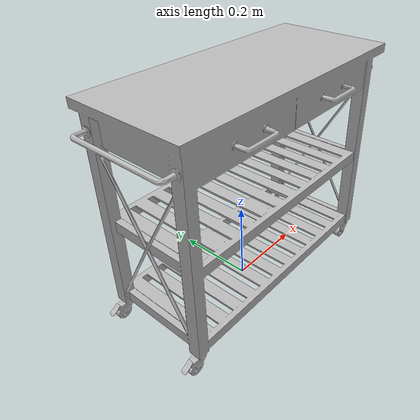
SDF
<sdf version="1.6">
	<model name="KitchenIslandsAndCarts_Of14cb38f9a68_lod0">
		<link name="main_link">
			<visual name="visual_RootNode">
				<geometry>
					<mesh>
						<uri>model://KitchenIslandsAndCarts_Of14cb38f9a68_lod0/meshes/visual_RootNode.dae</uri>
					</mesh>
				</geometry>
			</visual>
			<collision name="collision_RootNode_lod0_0">
				<geometry>
					<mesh>
						<uri>model://KitchenIslandsAndCarts_Of14cb38f9a68_lod0/meshes/collision_RootNode_lod0_0.dae</uri>
					</mesh>
				</geometry>
			</collision>
		</link>
	</model>
</sdf>
